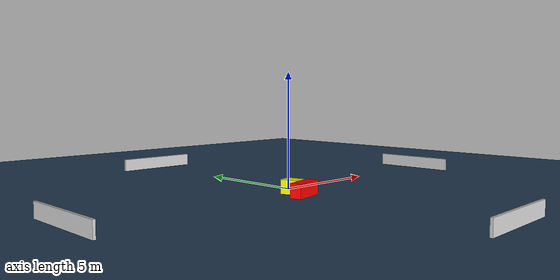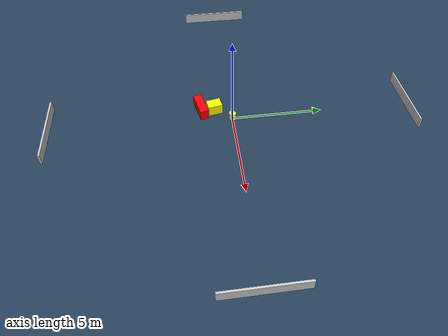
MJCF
<?xml version="1.0" ?>
<mujoco model="generated_environment">
  <option timestep="0.01" integrator="RK4" cone="elliptic"/>
  <default>
    <geom density="1"/>
  </default>
  <asset>
    <texture builtin="gradient" height="3072" name="skybox" rgb1="0.3 0.5 0.7" rgb2="0 0 0" type="skybox" width="512"/>
    <texture builtin="checker" height="300" name="groundplane" rgb1="0.2 0.3 0.4" rgb2="0.1 0.2 0.3" type="2d" width="300"/>
    <material name="groundplane" reflectance="0.2" texrepeat="5 5" texture="groundplane"/>
  </asset>
  <worldbody>
    <light dir="0 0 -1" directional="true" pos="0 0 1.5"/>
    <geom condim="3" friction="0.5 0.005 0.001" material="groundplane" name="floor" pos="0 0 0" size="0 0 0.05" type="plane"/>
    <body name="walls">
      <geom name="wall_1" condim="4" pos="-10.0 0.0 0.3" rgba="0.800000011920929 0.800000011920929 0.800000011920929 1.0" size="0.05 2.0 0.3" type="box"/>
      <geom name="wall_2" condim="4" pos="10.0 0.0 0.3" rgba="0.800000011920929 0.800000011920929 0.800000011920929 1.0" size="0.05 2.0 0.3" type="box"/>
      <geom name="wall_3" condim="4" pos="0.0 -10.0 0.3" rgba="0.800000011920929 0.800000011920929 0.800000011920929 1.0" size="2.0 0.05 0.3" type="box"/>
      <geom name="wall_4" condim="4" pos="0.0 10.0 0.3" rgba="0.800000011920929 0.800000011920929 0.800000011920929 1.0" size="2.0 0.05 0.3" type="box"/>
    </body>
    <body name="robot">
      <joint name="joint_x" type="slide" pos="0 0 0" axis="1 0 0"/>
      <joint name="joint_y" type="slide" pos="0 0 0" axis="0 1 0"/>
      <geom name="robot" type="cylinder" pos="0.0 0.0 0.2" size="0.2 0.2 0.0" mass="5.0" friction="1.0 0.005 0.0001" condim="4" rgba="1.0 1.0 0.0 1.0"/>
    </body>
    <body name="obstacle_1_movable">
      <geom name="obstacle_1_movable" condim="4" pos="-0.7190387208283409 -0.9381340374523879 0.3" euler="0 0 10.987656518008793" friction="0.0 0.005 0.001" rgba="1.0 1.0 0.0 1.0" size="0.3026958758586242 0.39530037196265405 0.3" type="box" mass="0.1"/>
      <joint type="free"/>
    </body>
    <body name="obstacle_2_static">
      <geom name="obstacle_2_static" condim="4" pos="-0.8143286852576007 -1.6781596348595988 0.3" euler="0 0 102.84074339828611" friction="0.0 0.005 0.001" rgba="1.0 0.0 0.0 1.0" size="0.23591073084673397 0.7035504897635478 0.3" type="box"/>
    </body>
  </worldbody>
  <actuator>
    <motor name="actuator_x" joint="joint_x" gear="1" ctrlrange="-1 1"/>
    <motor name="actuator_y" joint="joint_y" gear="1" ctrlrange="-1 1"/>
  </actuator>
</mujoco>
